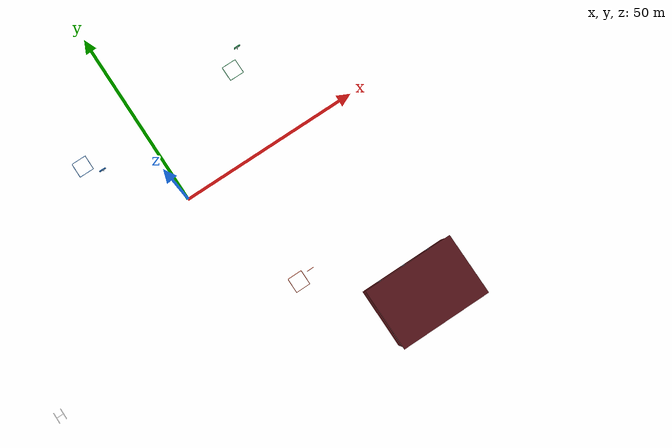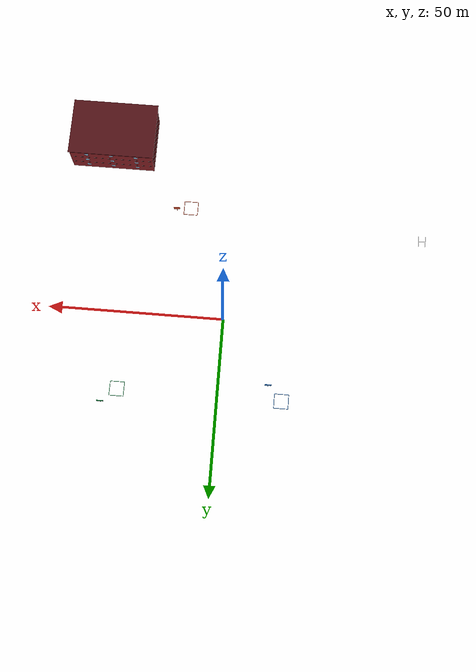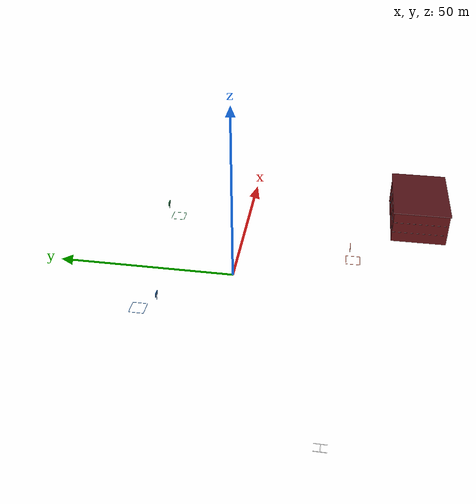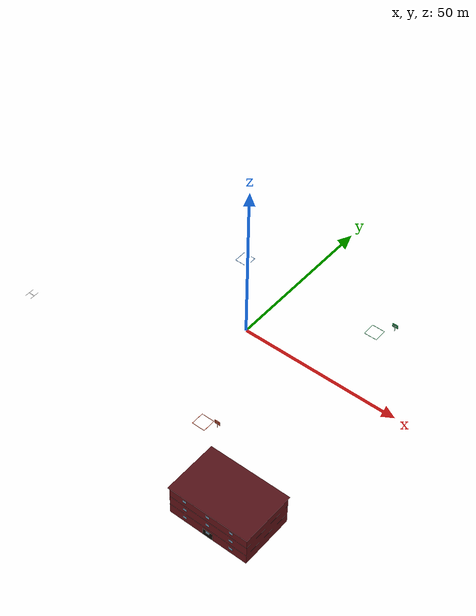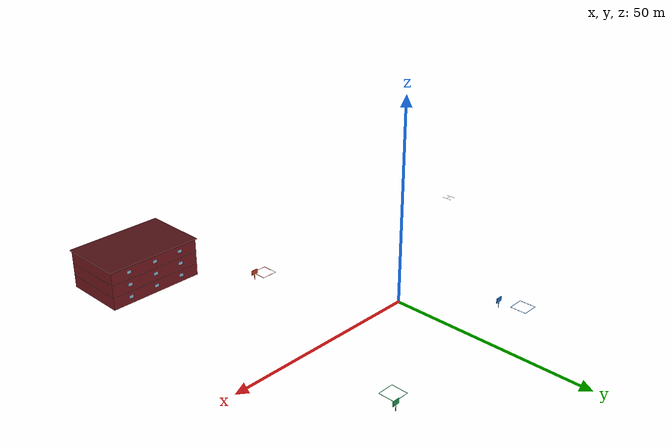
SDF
<sdf version="1.7">
 <world name="campus_regional">
  <model name="gymnasium">
   <static>true</static>
   <pose>36.0 -52.0 0 0 0 0</pose>
   <link name="body">
    <visual name="body">
     <pose>0 0 4.800 0 0 0</pose>
     <geometry><box><size>24.000 16.000 9.600</size></box></geometry>
     <material><ambient>0.520 0.120 0.140 1.000</ambient><diffuse>0.520 0.120 0.140 1.000</diffuse></material>
    </visual>
    <collision name="body_collision">
     <pose>0 0 4.800 0 0 0</pose>
     <geometry><box><size>24.000 16.000 9.600</size></box></geometry>
    </collision>
    <visual name="roof">
     <pose>0 0 9.700 0 0 0</pose>
     <geometry><box><size>24.600 16.600 0.200</size></box></geometry>
     <material><ambient>0.300 0.060 0.080 1.000</ambient><diffuse>0.300 0.060 0.080 1.000</diffuse></material>
    </visual>
    <visual name="floor_sep_n_1">
     <pose>0 8.018 3.200 0 0 0</pose>
     <geometry><box><size>24.100 0.035 0.060</size></box></geometry>
     <material><ambient>0.080 0.080 0.080 1.000</ambient><diffuse>0.080 0.080 0.080 1.000</diffuse></material>
    </visual>
    <visual name="floor_sep_s_1">
     <pose>0 -8.018 3.200 0 0 0</pose>
     <geometry><box><size>24.100 0.035 0.060</size></box></geometry>
     <material><ambient>0.080 0.080 0.080 1.000</ambient><diffuse>0.080 0.080 0.080 1.000</diffuse></material>
    </visual>
    <visual name="floor_sep_e_1">
     <pose>12.018 0 3.200 0 0 0</pose>
     <geometry><box><size>0.035 16.100 0.060</size></box></geometry>
     <material><ambient>0.080 0.080 0.080 1.000</ambient><diffuse>0.080 0.080 0.080 1.000</diffuse></material>
    </visual>
    <visual name="floor_sep_w_1">
     <pose>-12.018 0 3.200 0 0 0</pose>
     <geometry><box><size>0.035 16.100 0.060</size></box></geometry>
     <material><ambient>0.080 0.080 0.080 1.000</ambient><diffuse>0.080 0.080 0.080 1.000</diffuse></material>
    </visual>
    <visual name="floor_sep_n_2">
     <pose>0 8.018 6.400 0 0 0</pose>
     <geometry><box><size>24.100 0.035 0.060</size></box></geometry>
     <material><ambient>0.080 0.080 0.080 1.000</ambient><diffuse>0.080 0.080 0.080 1.000</diffuse></material>
    </visual>
    <visual name="floor_sep_s_2">
     <pose>0 -8.018 6.400 0 0 0</pose>
     <geometry><box><size>24.100 0.035 0.060</size></box></geometry>
     <material><ambient>0.080 0.080 0.080 1.000</ambient><diffuse>0.080 0.080 0.080 1.000</diffuse></material>
    </visual>
    <visual name="floor_sep_e_2">
     <pose>12.018 0 6.400 0 0 0</pose>
     <geometry><box><size>0.035 16.100 0.060</size></box></geometry>
     <material><ambient>0.080 0.080 0.080 1.000</ambient><diffuse>0.080 0.080 0.080 1.000</diffuse></material>
    </visual>
    <visual name="floor_sep_w_2">
     <pose>-12.018 0 6.400 0 0 0</pose>
     <geometry><box><size>0.035 16.100 0.060</size></box></geometry>
     <material><ambient>0.080 0.080 0.080 1.000</ambient><diffuse>0.080 0.080 0.080 1.000</diffuse></material>
    </visual>
    <visual name="front_door">
     <pose>0 -8.012 1.2 0 0 0</pose>
     <geometry><box><size>3.000 0.050 2.400</size></box></geometry>
     <material><ambient>0.080 0.060 0.040 1.000</ambient><diffuse>0.080 0.060 0.040 1.000</diffuse></material>
    </visual>
    <visual name="win_n_1_-7.2">
     <pose>-7.200 8.020 1.700 0 0 0</pose>
     <geometry><box><size>1.100 0.035 0.750</size></box></geometry>
     <material><ambient>0.620 0.820 0.950 1.000</ambient><diffuse>0.620 0.820 0.950 1.000</diffuse></material>
    </visual>
    <visual name="win_s_1_-7.2">
     <pose>-7.200 -8.020 1.700 0 0 0</pose>
     <geometry><box><size>1.100 0.035 0.750</size></box></geometry>
     <material><ambient>0.620 0.820 0.950 1.000</ambient><diffuse>0.620 0.820 0.950 1.000</diffuse></material>
    </visual>
    <visual name="win_n_1_0.0">
     <pose>0.000 8.020 1.700 0 0 0</pose>
     <geometry><box><size>1.100 0.035 0.750</size></box></geometry>
     <material><ambient>0.620 0.820 0.950 1.000</ambient><diffuse>0.620 0.820 0.950 1.000</diffuse></material>
    </visual>
    <visual name="win_s_1_0.0">
     <pose>0.000 -8.020 1.700 0 0 0</pose>
     <geometry><box><size>1.100 0.035 0.750</size></box></geometry>
     <material><ambient>0.620 0.820 0.950 1.000</ambient><diffuse>0.620 0.820 0.950 1.000</diffuse></material>
    </visual>
    <visual name="win_n_1_7.2">
     <pose>7.200 8.020 1.700 0 0 0</pose>
     <geometry><box><size>1.100 0.035 0.750</size></box></geometry>
     <material><ambient>0.620 0.820 0.950 1.000</ambient><diffuse>0.620 0.820 0.950 1.000</diffuse></material>
    </visual>
    <visual name="win_s_1_7.2">
     <pose>7.200 -8.020 1.700 0 0 0</pose>
     <geometry><box><size>1.100 0.035 0.750</size></box></geometry>
     <material><ambient>0.620 0.820 0.950 1.000</ambient><diffuse>0.620 0.820 0.950 1.000</diffuse></material>
    </visual>
    <visual name="win_n_2_-7.2">
     <pose>-7.200 8.020 4.900 0 0 0</pose>
     <geometry><box><size>1.100 0.035 0.750</size></box></geometry>
     <material><ambient>0.620 0.820 0.950 1.000</ambient><diffuse>0.620 0.820 0.950 1.000</diffuse></material>
    </visual>
    <visual name="win_s_2_-7.2">
     <pose>-7.200 -8.020 4.900 0 0 0</pose>
     <geometry><box><size>1.100 0.035 0.750</size></box></geometry>
     <material><ambient>0.620 0.820 0.950 1.000</ambient><diffuse>0.620 0.820 0.950 1.000</diffuse></material>
    </visual>
    <visual name="win_n_2_0.0">
     <pose>0.000 8.020 4.900 0 0 0</pose>
     <geometry><box><size>1.100 0.035 0.750</size></box></geometry>
     <material><ambient>0.620 0.820 0.950 1.000</ambient><diffuse>0.620 0.820 0.950 1.000</diffuse></material>
    </visual>
    <visual name="win_s_2_0.0">
     <pose>0.000 -8.020 4.900 0 0 0</pose>
     <geometry><box><size>1.100 0.035 0.750</size></box></geometry>
     <material><ambient>0.620 0.820 0.950 1.000</ambient><diffuse>0.620 0.820 0.950 1.000</diffuse></material>
    </visual>
    <visual name="win_n_2_7.2">
     <pose>7.200 8.020 4.900 0 0 0</pose>
     <geometry><box><size>1.100 0.035 0.750</size></box></geometry>
     <material><ambient>0.620 0.820 0.950 1.000</ambient><diffuse>0.620 0.820 0.950 1.000</diffuse></material>
    </visual>
    <visual name="win_s_2_7.2">
     <pose>7.200 -8.020 4.900 0 0 0</pose>
     <geometry><box><size>1.100 0.035 0.750</size></box></geometry>
     <material><ambient>0.620 0.820 0.950 1.000</ambient><diffuse>0.620 0.820 0.950 1.000</diffuse></material>
    </visual>
    <visual name="win_n_3_-7.2">
     <pose>-7.200 8.020 8.100 0 0 0</pose>
     <geometry><box><size>1.100 0.035 0.750</size></box></geometry>
     <material><ambient>0.620 0.820 0.950 1.000</ambient><diffuse>0.620 0.820 0.950 1.000</diffuse></material>
    </visual>
    <visual name="win_s_3_-7.2">
     <pose>-7.200 -8.020 8.100 0 0 0</pose>
     <geometry><box><size>1.100 0.035 0.750</size></box></geometry>
     <material><ambient>0.620 0.820 0.950 1.000</ambient><diffuse>0.620 0.820 0.950 1.000</diffuse></material>
    </visual>
    <visual name="win_n_3_0.0">
     <pose>0.000 8.020 8.100 0 0 0</pose>
     <geometry><box><size>1.100 0.035 0.750</size></box></geometry>
     <material><ambient>0.620 0.820 0.950 1.000</ambient><diffuse>0.620 0.820 0.950 1.000</diffuse></material>
    </visual>
    <visual name="win_s_3_0.0">
     <pose>0.000 -8.020 8.100 0 0 0</pose>
     <geometry><box><size>1.100 0.035 0.750</size></box></geometry>
     <material><ambient>0.620 0.820 0.950 1.000</ambient><diffuse>0.620 0.820 0.950 1.000</diffuse></material>
    </visual>
    <visual name="win_n_3_7.2">
     <pose>7.200 8.020 8.100 0 0 0</pose>
     <geometry><box><size>1.100 0.035 0.750</size></box></geometry>
     <material><ambient>0.620 0.820 0.950 1.000</ambient><diffuse>0.620 0.820 0.950 1.000</diffuse></material>
    </visual>
    <visual name="win_s_3_7.2">
     <pose>7.200 -8.020 8.100 0 0 0</pose>
     <geometry><box><size>1.100 0.035 0.750</size></box></geometry>
     <material><ambient>0.620 0.820 0.950 1.000</ambient><diffuse>0.620 0.820 0.950 1.000</diffuse></material>
    </visual>
   </link>
  </model>
  <model name="regional_loading_markers">
   <static>true</static>
   <link name="body">
    <visual name="A_bay_0_-2">
     <pose>-18.0 20.0 0.012 0 0 0</pose>
     <geometry><box><size>4 0.12 0.01</size></box></geometry>
     <material><ambient>0.16 0.48 0.82 1.0</ambient><diffuse>0.16 0.48 0.82 1.0</diffuse></material>
    </visual>
    <visual name="A_bay_0_2">
     <pose>-18.0 24.0 0.012 0 0 0</pose>
     <geometry><box><size>4 0.12 0.01</size></box></geometry>
     <material><ambient>0.16 0.48 0.82 1.0</ambient><diffuse>0.16 0.48 0.82 1.0</diffuse></material>
    </visual>
    <visual name="A_bay_-2_0">
     <pose>-20.0 22.0 0.012 0 0 0</pose>
     <geometry><box><size>0.12 4 0.01</size></box></geometry>
     <material><ambient>0.16 0.48 0.82 1.0</ambient><diffuse>0.16 0.48 0.82 1.0</diffuse></material>
    </visual>
    <visual name="A_bay_2_0">
     <pose>-16.0 22.0 0.012 0 0 0</pose>
     <geometry><box><size>0.12 4 0.01</size></box></geometry>
     <material><ambient>0.16 0.48 0.82 1.0</ambient><diffuse>0.16 0.48 0.82 1.0</diffuse></material>
    </visual>
    <visual name="B_bay_0_-2">
     <pose>28.0 20.0 0.012 0 0 0</pose>
     <geometry><box><size>4 0.12 0.01</size></box></geometry>
     <material><ambient>0.15 0.65 0.35 1.0</ambient><diffuse>0.15 0.65 0.35 1.0</diffuse></material>
    </visual>
    <visual name="B_bay_0_2">
     <pose>28.0 24.0 0.012 0 0 0</pose>
     <geometry><box><size>4 0.12 0.01</size></box></geometry>
     <material><ambient>0.15 0.65 0.35 1.0</ambient><diffuse>0.15 0.65 0.35 1.0</diffuse></material>
    </visual>
    <visual name="B_bay_-2_0">
     <pose>26.0 22.0 0.012 0 0 0</pose>
     <geometry><box><size>0.12 4 0.01</size></box></geometry>
     <material><ambient>0.15 0.65 0.35 1.0</ambient><diffuse>0.15 0.65 0.35 1.0</diffuse></material>
    </visual>
    <visual name="B_bay_2_0">
     <pose>30.0 22.0 0.012 0 0 0</pose>
     <geometry><box><size>0.12 4 0.01</size></box></geometry>
     <material><ambient>0.15 0.65 0.35 1.0</ambient><diffuse>0.15 0.65 0.35 1.0</diffuse></material>
    </visual>
    <visual name="C_bay_0_-2">
     <pose>12.0 -35.0 0.012 0 0 0</pose>
     <geometry><box><size>4 0.12 0.01</size></box></geometry>
     <material><ambient>0.82 0.3 0.18 1.0</ambient><diffuse>0.82 0.3 0.18 1.0</diffuse></material>
    </visual>
    <visual name="C_bay_0_2">
     <pose>12.0 -31.0 0.012 0 0 0</pose>
     <geometry><box><size>4 0.12 0.01</size></box></geometry>
     <material><ambient>0.82 0.3 0.18 1.0</ambient><diffuse>0.82 0.3 0.18 1.0</diffuse></material>
    </visual>
    <visual name="C_bay_-2_0">
     <pose>10.0 -33.0 0.012 0 0 0</pose>
     <geometry><box><size>0.12 4 0.01</size></box></geometry>
     <material><ambient>0.82 0.3 0.18 1.0</ambient><diffuse>0.82 0.3 0.18 1.0</diffuse></material>
    </visual>
    <visual name="C_bay_2_0">
     <pose>14.0 -33.0 0.012 0 0 0</pose>
     <geometry><box><size>0.12 4 0.01</size></box></geometry>
     <material><ambient>0.82 0.3 0.18 1.0</ambient><diffuse>0.82 0.3 0.18 1.0</diffuse></material>
    </visual>
    <visual name="hub_H_-1">
     <pose>-57.0 -28.0 0.015 0 0 0</pose>
     <geometry><box><size>0.14 3 0.01</size></box></geometry>
     <material><ambient>1 1 1 1</ambient><diffuse>1 1 1 1</diffuse></material>
    </visual>
    <visual name="hub_H_1">
     <pose>-55.0 -28.0 0.015 0 0 0</pose>
     <geometry><box><size>0.14 3 0.01</size></box></geometry>
     <material><ambient>1 1 1 1</ambient><diffuse>1 1 1 1</diffuse></material>
    </visual>
    <visual name="hub_H_cross">
     <pose>-56.0 -28.0 0.015 0 0 0</pose>
     <geometry><box><size>2 0.14 0.01</size></box></geometry>
     <material><ambient>1 1 1 1</ambient><diffuse>1 1 1 1</diffuse></material>
    </visual>
   </link>
  </model>
  <model name="regional_A_sign">
   <static>true</static>
   <link name="body">
    <visual name="post">
     <pose>-14.0 18.0 1 0 0 0</pose>
     <geometry><box><size>0.1 0.1 2</size></box></geometry>
     <material><ambient>0.16 0.48 0.82 1.0</ambient><diffuse>0.16 0.48 0.82 1.0</diffuse></material>
    </visual>
    <collision name="post_collision">
     <pose>-14.0 18.0 1 0 0 0</pose>
     <geometry><box><size>0.1 0.1 2</size></box></geometry>
    </collision>
    <visual name="board">
     <pose>-14.0 18.0 2 0 0 0</pose>
     <geometry><box><size>1.8 0.15 1.2</size></box></geometry>
     <material><ambient>0.16 0.48 0.82 1.0</ambient><diffuse>0.16 0.48 0.82 1.0</diffuse></material>
    </visual>
    <collision name="board_collision">
     <pose>-14.0 18.0 2 0 0 0</pose>
     <geometry><box><size>1.8 0.15 1.2</size></box></geometry>
    </collision>
    <visual name="letter_0">
     <pose>-14.25 17.91 2.0 0 -1.0121970114513341 0</pose>
     <geometry><box><size>0.9433981132056605 0.025 0.08</size></box></geometry>
     <material><ambient>1 1 1 1</ambient><diffuse>1 1 1 1</diffuse></material>
    </visual>
    <visual name="letter_1">
     <pose>-13.75 17.91 2.0 0 1.0121970114513341 0</pose>
     <geometry><box><size>0.9433981132056605 0.025 0.08</size></box></geometry>
     <material><ambient>1 1 1 1</ambient><diffuse>1 1 1 1</diffuse></material>
    </visual>
    <visual name="letter_2">
     <pose>-14.0 17.91 1.9 0 -0.0 0</pose>
     <geometry><box><size>0.6 0.025 0.08</size></box></geometry>
     <material><ambient>1 1 1 1</ambient><diffuse>1 1 1 1</diffuse></material>
    </visual>
   </link>
  </model>
  <model name="regional_B_sign">
   <static>true</static>
   <link name="body">
    <visual name="post">
     <pose>32.0 26.0 1 0 0 0</pose>
     <geometry><box><size>0.1 0.1 2</size></box></geometry>
     <material><ambient>0.15 0.65 0.35 1.0</ambient><diffuse>0.15 0.65 0.35 1.0</diffuse></material>
    </visual>
    <collision name="post_collision">
     <pose>32.0 26.0 1 0 0 0</pose>
     <geometry><box><size>0.1 0.1 2</size></box></geometry>
    </collision>
    <visual name="board">
     <pose>32.0 26.0 2 0 0 0</pose>
     <geometry><box><size>1.8 0.15 1.2</size></box></geometry>
     <material><ambient>0.15 0.65 0.35 1.0</ambient><diffuse>0.15 0.65 0.35 1.0</diffuse></material>
    </visual>
    <collision name="board_collision">
     <pose>32.0 26.0 2 0 0 0</pose>
     <geometry><box><size>1.8 0.15 1.2</size></box></geometry>
    </collision>
    <visual name="letter_0">
     <pose>31.6 25.91 2.0 0 -1.5707963267948966 0</pose>
     <geometry><box><size>0.8 0.025 0.08</size></box></geometry>
     <material><ambient>1 1 1 1</ambient><diffuse>1 1 1 1</diffuse></material>
    </visual>
    <visual name="letter_1">
     <pose>31.95 25.91 2.4 0 -0.0 0</pose>
     <geometry><box><size>0.7 0.025 0.08</size></box></geometry>
     <material><ambient>1 1 1 1</ambient><diffuse>1 1 1 1</diffuse></material>
    </visual>
    <visual name="letter_2">
     <pose>32.35 25.91 2.25 0 1.2490457723982544 0</pose>
     <geometry><box><size>0.316227766016838 0.025 0.08</size></box></geometry>
     <material><ambient>1 1 1 1</ambient><diffuse>1 1 1 1</diffuse></material>
    </visual>
    <visual name="letter_3">
     <pose>32.0 25.91 2.05 0 3.017237659043032 0</pose>
     <geometry><box><size>0.806225774829855 0.025 0.08</size></box></geometry>
     <material><ambient>1 1 1 1</ambient><diffuse>1 1 1 1</diffuse></material>
    </visual>
    <visual name="letter_4">
     <pose>32.0 25.91 1.95 0 0.12435499454676144 0</pose>
     <geometry><box><size>0.806225774829855 0.025 0.08</size></box></geometry>
     <material><ambient>1 1 1 1</ambient><diffuse>1 1 1 1</diffuse></material>
    </visual>
    <visual name="letter_5">
     <pose>32.35 25.91 1.75 0 1.892546881191539 0</pose>
     <geometry><box><size>0.316227766016838 0.025 0.08</size></box></geometry>
     <material><ambient>1 1 1 1</ambient><diffuse>1 1 1 1</diffuse></material>
    </visual>
    <visual name="letter_6">
     <pose>31.95 25.91 1.6 0 -3.141592653589793 0</pose>
     <geometry><box><size>0.7 0.025 0.08</size></box></geometry>
     <material><ambient>1 1 1 1</ambient><diffuse>1 1 1 1</diffuse></material>
    </visual>
   </link>
  </model>
  <model name="regional_C_sign">
   <static>true</static>
   <link name="body">
    <visual name="post">
     <pose>16.0 -32.0 1 0 0 0</pose>
     <geometry><box><size>0.1 0.1 2</size></box></geometry>
     <material><ambient>0.82 0.3 0.18 1.0</ambient><diffuse>0.82 0.3 0.18 1.0</diffuse></material>
    </visual>
    <collision name="post_collision">
     <pose>16.0 -32.0 1 0 0 0</pose>
     <geometry><box><size>0.1 0.1 2</size></box></geometry>
    </collision>
    <visual name="board">
     <pose>16.0 -32.0 2 0 0 0</pose>
     <geometry><box><size>1.8 0.15 1.2</size></box></geometry>
     <material><ambient>0.82 0.3 0.18 1.0</ambient><diffuse>0.82 0.3 0.18 1.0</diffuse></material>
    </visual>
    <collision name="board_collision">
     <pose>16.0 -32.0 2 0 0 0</pose>
     <geometry><box><size>1.8 0.15 1.2</size></box></geometry>
    </collision>
    <visual name="letter_0">
     <pose>16.0 -32.09 2.4 0 -3.141592653589793 0</pose>
     <geometry><box><size>0.8 0.025 0.08</size></box></geometry>
     <material><ambient>1 1 1 1</ambient><diffuse>1 1 1 1</diffuse></material>
    </visual>
    <visual name="letter_1">
     <pose>15.6 -32.09 2.0 0 1.5707963267948966 0</pose>
     <geometry><box><size>0.8 0.025 0.08</size></box></geometry>
     <material><ambient>1 1 1 1</ambient><diffuse>1 1 1 1</diffuse></material>
    </visual>
    <visual name="letter_2">
     <pose>16.0 -32.09 1.6 0 -0.0 0</pose>
     <geometry><box><size>0.8 0.025 0.08</size></box></geometry>
     <material><ambient>1 1 1 1</ambient><diffuse>1 1 1 1</diffuse></material>
    </visual>
   </link>
  </model>
 </world>
</sdf>
